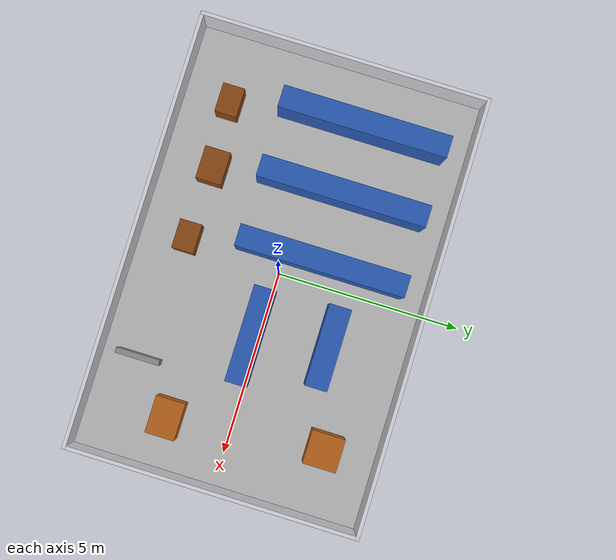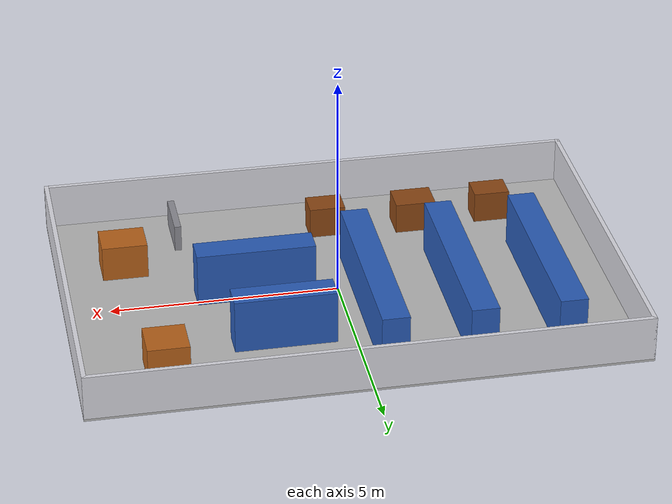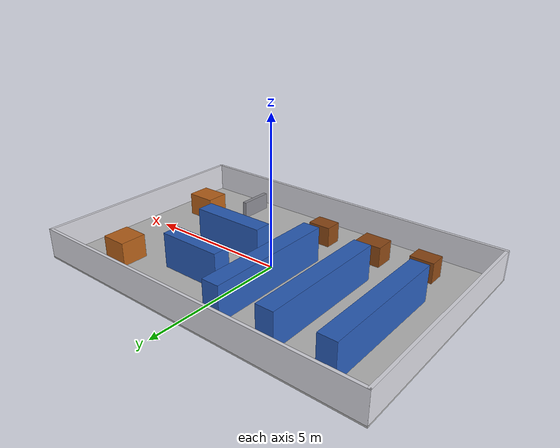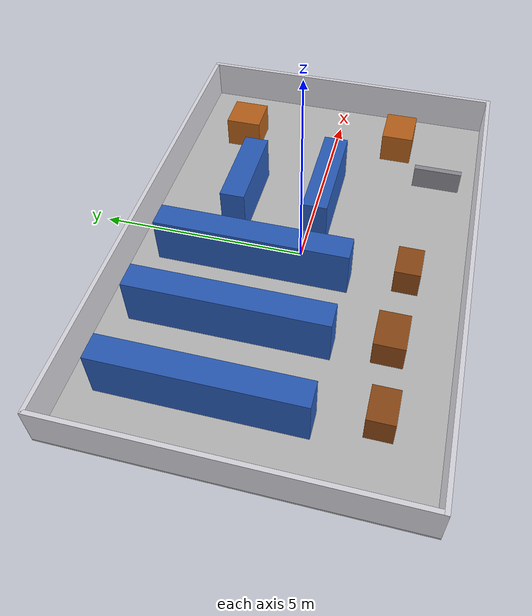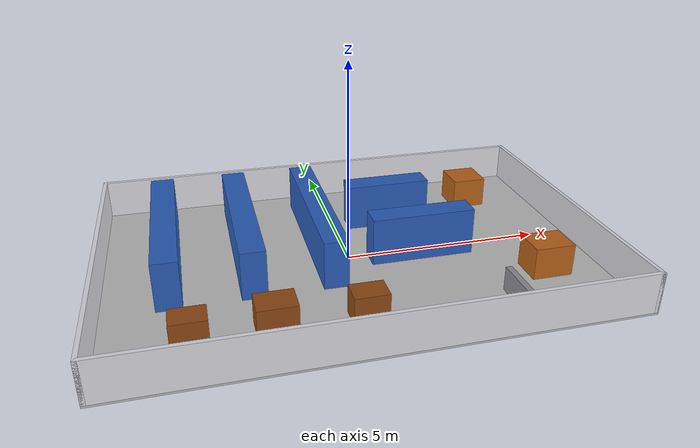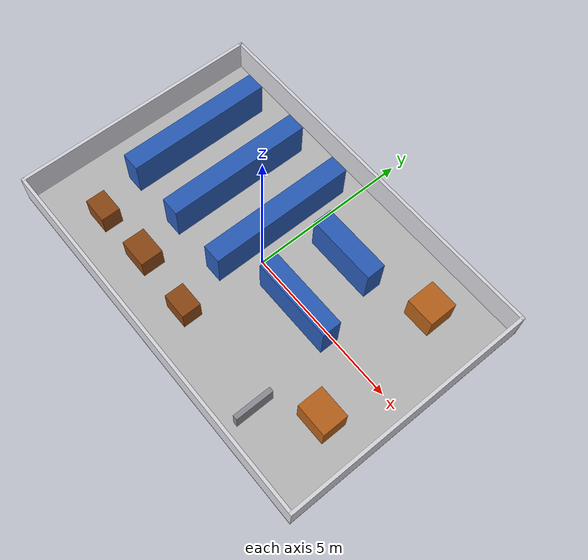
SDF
<?xml version='1.0' encoding='utf-8'?>
<sdf version="1.9">
  <world name="warehouse_dispatch">
    <physics name="research_physics" type="ode">
      <max_step_size>0.003</max_step_size>
      <real_time_factor>1.0</real_time_factor>
    </physics>
    <plugin filename="gz-sim-physics-system" name="gz::sim::systems::Physics" />
    <plugin filename="gz-sim-user-commands-system" name="gz::sim::systems::UserCommands" />
    <plugin filename="gz-sim-scene-broadcaster-system" name="gz::sim::systems::SceneBroadcaster" />
    <plugin filename="gz-sim-imu-system" name="gz::sim::systems::Imu" />
    <plugin filename="gz-sim-sensors-system" name="gz::sim::systems::Sensors">
      <render_engine>ogre2</render_engine>
    </plugin>
    <scene>
      <ambient>0.8 0.8 0.8 1</ambient>
      <background>0.18 0.22 0.28 1</background>
      <shadows>false</shadows>
      <grid>true</grid>
    </scene>
    <light name="sun" type="directional">
      <pose>0 0 10 0 0 0</pose>
      <diffuse>0.9 0.9 0.9 1</diffuse>
      <specular>0.2 0.2 0.2 1</specular>
      <direction>-0.5 0.2 -1.0</direction>
    </light>
    <model name="warehouse_dispatch_layout">
      <static>true</static>
      <link name="layout_link">
        <collision name="floor_collision">
          <pose>0 0 -0.025 0 0 0</pose>
          <geometry>
            <box>
              <size>12.0 8.0 0.05</size>
            </box>
          </geometry>
        </collision>
        <visual name="floor_visual">
          <pose>0 0 -0.025 0 0 0</pose>
          <geometry>
            <box>
              <size>12.0 8.0 0.05</size>
            </box>
          </geometry>
          <material>
            <ambient>0.72 0.72 0.72 1</ambient>
            <diffuse>0.72 0.72 0.72 1</diffuse>
          </material>
        </visual>
        <collision name="boundary_north">
          <pose>0.0 3.95 0.5 0 0 0</pose>
          <geometry>
            <box>
              <size>12.0 0.1 1.0</size>
            </box>
          </geometry>
        </collision>
        <visual name="boundary_north_visual">
          <pose>0.0 3.95 0.5 0 0 0</pose>
          <geometry>
            <box>
              <size>12.0 0.1 1.0</size>
            </box>
          </geometry>
          <material>
            <ambient>0.85 0.85 0.88 1</ambient>
            <diffuse>0.85 0.85 0.88 1</diffuse>
          </material>
        </visual>
        <collision name="boundary_south">
          <pose>0.0 -3.95 0.5 0 0 0</pose>
          <geometry>
            <box>
              <size>12.0 0.1 1.0</size>
            </box>
          </geometry>
        </collision>
        <visual name="boundary_south_visual">
          <pose>0.0 -3.95 0.5 0 0 0</pose>
          <geometry>
            <box>
              <size>12.0 0.1 1.0</size>
            </box>
          </geometry>
          <material>
            <ambient>0.85 0.85 0.88 1</ambient>
            <diffuse>0.85 0.85 0.88 1</diffuse>
          </material>
        </visual>
        <collision name="boundary_west">
          <pose>-5.95 0.0 0.5 0 0 0</pose>
          <geometry>
            <box>
              <size>0.1 8.0 1.0</size>
            </box>
          </geometry>
        </collision>
        <visual name="boundary_west_visual">
          <pose>-5.95 0.0 0.5 0 0 0</pose>
          <geometry>
            <box>
              <size>0.1 8.0 1.0</size>
            </box>
          </geometry>
          <material>
            <ambient>0.85 0.85 0.88 1</ambient>
            <diffuse>0.85 0.85 0.88 1</diffuse>
          </material>
        </visual>
        <collision name="boundary_east">
          <pose>5.95 0.0 0.5 0 0 0</pose>
          <geometry>
            <box>
              <size>0.1 8.0 1.0</size>
            </box>
          </geometry>
        </collision>
        <visual name="boundary_east_visual">
          <pose>5.95 0.0 0.5 0 0 0</pose>
          <geometry>
            <box>
              <size>0.1 8.0 1.0</size>
            </box>
          </geometry>
          <material>
            <ambient>0.85 0.85 0.88 1</ambient>
            <diffuse>0.85 0.85 0.88 1</diffuse>
          </material>
        </visual>
        <collision name="storage_rack_a">
          <pose>-4.4 1.0 0.6 0 0 0</pose>
          <geometry>
            <box>
              <size>0.6 4.6 1.2</size>
            </box>
          </geometry>
        </collision>
        <visual name="storage_rack_a_visual">
          <pose>-4.4 1.0 0.6 0 0 0</pose>
          <geometry>
            <box>
              <size>0.6 4.6 1.2</size>
            </box>
          </geometry>
          <material>
            <ambient>0.16 0.36 0.72 1</ambient>
            <diffuse>0.16 0.36 0.72 1</diffuse>
          </material>
        </visual>
        <collision name="storage_rack_b">
          <pose>-2.5 1.0 0.6 0 0 0</pose>
          <geometry>
            <box>
              <size>0.6 4.6 1.2</size>
            </box>
          </geometry>
        </collision>
        <visual name="storage_rack_b_visual">
          <pose>-2.5 1.0 0.6 0 0 0</pose>
          <geometry>
            <box>
              <size>0.6 4.6 1.2</size>
            </box>
          </geometry>
          <material>
            <ambient>0.16 0.36 0.72 1</ambient>
            <diffuse>0.16 0.36 0.72 1</diffuse>
          </material>
        </visual>
        <collision name="storage_rack_c">
          <pose>-0.6 1.0 0.6 0 0 0</pose>
          <geometry>
            <box>
              <size>0.6 4.6 1.2</size>
            </box>
          </geometry>
        </collision>
        <visual name="storage_rack_c_visual">
          <pose>-0.6 1.0 0.6 0 0 0</pose>
          <geometry>
            <box>
              <size>0.6 4.6 1.2</size>
            </box>
          </geometry>
          <material>
            <ambient>0.16 0.36 0.72 1</ambient>
            <diffuse>0.16 0.36 0.72 1</diffuse>
          </material>
        </visual>
        <collision name="inbound_pallet_a">
          <pose>-4.0 -2.6 0.35 0 0 0</pose>
          <geometry>
            <box>
              <size>0.8 0.6 0.7</size>
            </box>
          </geometry>
        </collision>
        <visual name="inbound_pallet_a_visual">
          <pose>-4.0 -2.6 0.35 0 0 0</pose>
          <geometry>
            <box>
              <size>0.8 0.6 0.7</size>
            </box>
          </geometry>
          <material>
            <ambient>0.55 0.28 0.08 1</ambient>
            <diffuse>0.55 0.28 0.08 1</diffuse>
          </material>
        </visual>
        <collision name="inbound_pallet_b">
          <pose>-2.2 -2.5 0.35 0 0 0</pose>
          <geometry>
            <box>
              <size>0.9 0.7 0.7</size>
            </box>
          </geometry>
        </collision>
        <visual name="inbound_pallet_b_visual">
          <pose>-2.2 -2.5 0.35 0 0 0</pose>
          <geometry>
            <box>
              <size>0.9 0.7 0.7</size>
            </box>
          </geometry>
          <material>
            <ambient>0.55 0.28 0.08 1</ambient>
            <diffuse>0.55 0.28 0.08 1</diffuse>
          </material>
        </visual>
        <collision name="inbound_pallet_c">
          <pose>-0.2 -2.6 0.35 0 0 0</pose>
          <geometry>
            <box>
              <size>0.8 0.6 0.7</size>
            </box>
          </geometry>
        </collision>
        <visual name="inbound_pallet_c_visual">
          <pose>-0.2 -2.6 0.35 0 0 0</pose>
          <geometry>
            <box>
              <size>0.8 0.6 0.7</size>
            </box>
          </geometry>
          <material>
            <ambient>0.55 0.28 0.08 1</ambient>
            <diffuse>0.55 0.28 0.08 1</diffuse>
          </material>
        </visual>
        <collision name="staging_rack_north">
          <pose>1.5 1.8 0.6 0 0 0</pose>
          <geometry>
            <box>
              <size>2.2 0.6 1.2</size>
            </box>
          </geometry>
        </collision>
        <visual name="staging_rack_north_visual">
          <pose>1.5 1.8 0.6 0 0 0</pose>
          <geometry>
            <box>
              <size>2.2 0.6 1.2</size>
            </box>
          </geometry>
          <material>
            <ambient>0.16 0.36 0.72 1</ambient>
            <diffuse>0.16 0.36 0.72 1</diffuse>
          </material>
        </visual>
        <collision name="staging_rack_south">
          <pose>1.8 -0.2 0.6 0 0 0</pose>
          <geometry>
            <box>
              <size>2.6 0.6 1.2</size>
            </box>
          </geometry>
        </collision>
        <visual name="staging_rack_south_visual">
          <pose>1.8 -0.2 0.6 0 0 0</pose>
          <geometry>
            <box>
              <size>2.6 0.6 1.2</size>
            </box>
          </geometry>
          <material>
            <ambient>0.16 0.36 0.72 1</ambient>
            <diffuse>0.16 0.36 0.72 1</diffuse>
          </material>
        </visual>
        <collision name="outbound_pallet_a">
          <pose>4.1 2.5 0.4 0 0 0</pose>
          <geometry>
            <box>
              <size>0.9 0.9 0.8</size>
            </box>
          </geometry>
        </collision>
        <visual name="outbound_pallet_a_visual">
          <pose>4.1 2.5 0.4 0 0 0</pose>
          <geometry>
            <box>
              <size>0.9 0.9 0.8</size>
            </box>
          </geometry>
          <material>
            <ambient>0.72 0.38 0.10 1</ambient>
            <diffuse>0.72 0.38 0.10 1</diffuse>
          </material>
        </visual>
        <collision name="outbound_pallet_b">
          <pose>4.5 -1.7 0.4 0 0 0</pose>
          <geometry>
            <box>
              <size>1.0 0.8 0.8</size>
            </box>
          </geometry>
        </collision>
        <visual name="outbound_pallet_b_visual">
          <pose>4.5 -1.7 0.4 0 0 0</pose>
          <geometry>
            <box>
              <size>1.0 0.8 0.8</size>
            </box>
          </geometry>
          <material>
            <ambient>0.72 0.38 0.10 1</ambient>
            <diffuse>0.72 0.38 0.10 1</diffuse>
          </material>
        </visual>
        <collision name="dock_divider">
          <pose>3.2 -2.9 0.3 0 0 0</pose>
          <geometry>
            <box>
              <size>0.15 1.2 0.6</size>
            </box>
          </geometry>
        </collision>
        <visual name="dock_divider_visual">
          <pose>3.2 -2.9 0.3 0 0 0</pose>
          <geometry>
            <box>
              <size>0.15 1.2 0.6</size>
            </box>
          </geometry>
          <material>
            <ambient>0.55 0.55 0.58 1</ambient>
            <diffuse>0.55 0.55 0.58 1</diffuse>
          </material>
        </visual>
      </link>
    </model>
  </world>
</sdf>
